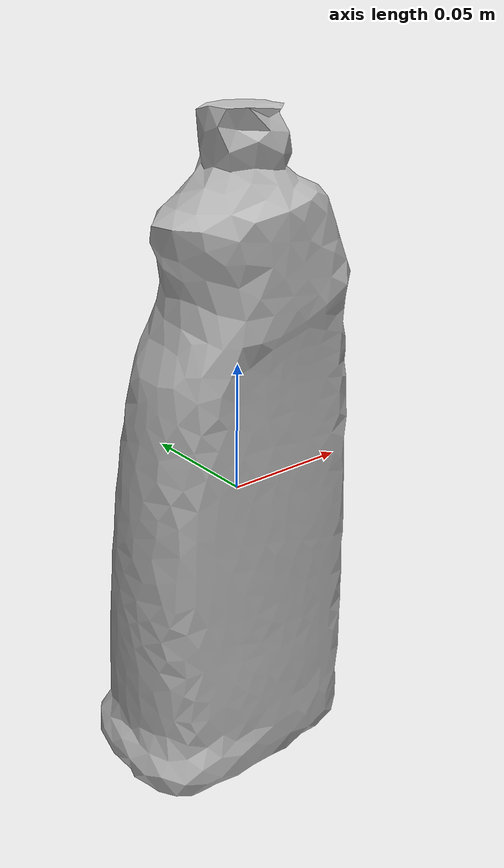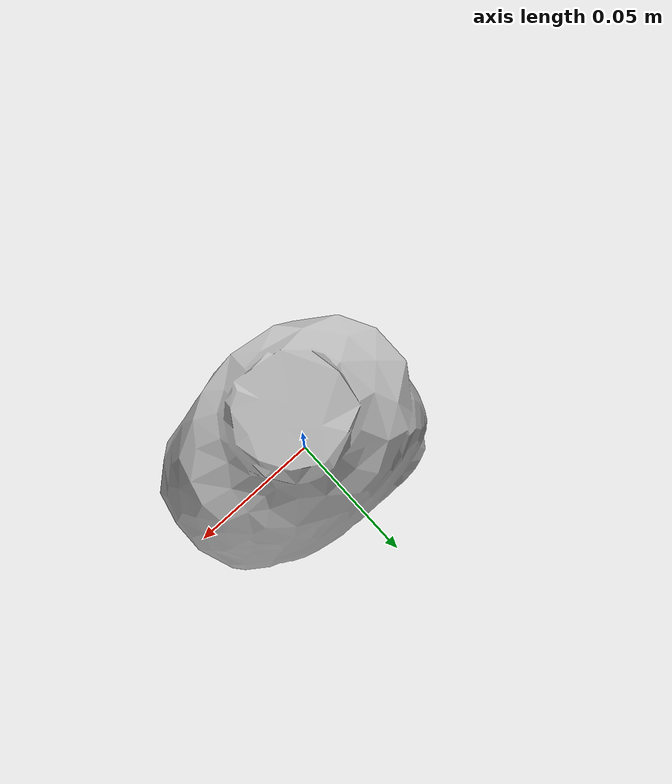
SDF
<?xml version="1.0" ?>
<sdf version="1.7">
    <model name="021_bleach_cleanser">
        <link name="021_bleach_cleanser_link">
            <inertial>
                <pose>-0.000476 0.002307 -0.011854 0.0 0.0 0.0</pose>
                <mass>1.0</mass>
                <inertia>0.0 0.0 0.0 0.0 0.0 0.0</inertia>
            </inertial>
            <collision name="021_bleach_cleanser_collision">
                <surface>
                    <friction>
                        <ode>
                            <mu>1</mu>
                            <mu2>1</mu2>
                        </ode>
                    </friction>
                </surface>
                <max_contact>1</max_contact>
                <geometry>
                    <mesh>
                        <uri>model://021_bleach_cleanser/textured.obj</uri>
                    </mesh>
                </geometry>
            </collision>
            <visual name="021_bleach_cleanser_visual">
                <geometry>
                    <mesh>
                        <uri>model://021_bleach_cleanser/textured.obj</uri>
                    </mesh>
                </geometry>
            </visual>
        </link>

        <joint name="world_to_base_link" type="fixed">
            <parent>world</parent>
            <child>021_bleach_cleanser_link</child>
        </joint>
    </model>
</sdf>
